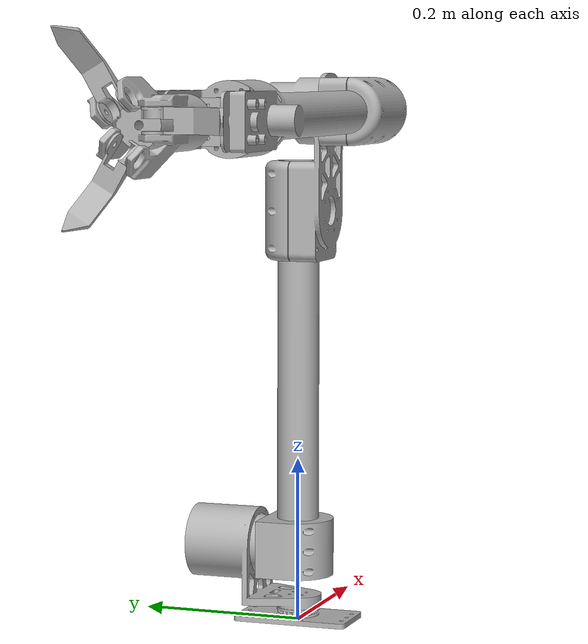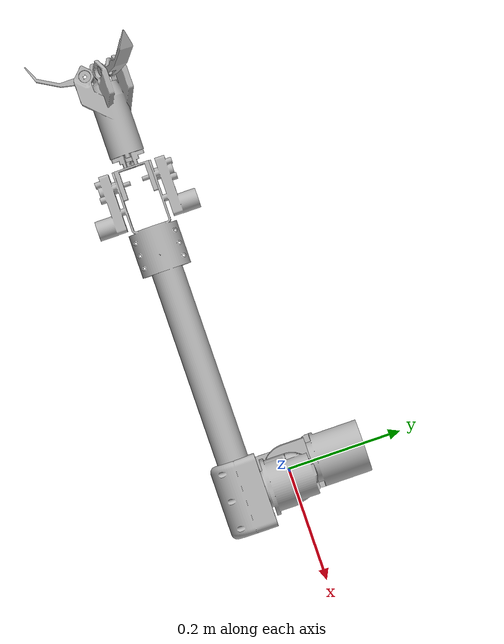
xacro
<?xml version="1.0" ?>
<robot name="arm_model" xmlns:xacro="http://www.ros.org/wiki/xacro">

<xacro:include filename="$(find arm_description)/urdf/materials.xacro" />
<xacro:arg name="controllers_yaml" default="" />
<!--xacro:include filename="$(find arm_description)/urdf/arm_model.trans" /-->
<!--xacro:include filename="$(find arm_description)/urdf/arm_model.gazebo" /-->
<link name="base_link">
  <inertial>
    <origin xyz="-2.7080784655318005e-16 5.153839971860783e-15 0.004136802049565343" rpy="0 0 0"/>
    <mass value="0.5419518835414427"/>
    <inertia ixx="0.00091" iyy="0.00027" izz="0.001167" ixy="0.0" iyz="0.0" ixz="-0.0"/>
  </inertial>
  <visual>
    <origin xyz="0 0 0" rpy="0 0 0"/>
    <geometry>
      <mesh filename="package://arm_description/meshes/base_link.stl" scale="0.001 0.001 0.001"/>
    </geometry>
    <material name="silver"/>
  </visual>
  <collision>
    <origin xyz="0 0 0" rpy="0 0 0"/>
    <geometry>
      <mesh filename="package://arm_description/meshes/base_link.stl" scale="0.001 0.001 0.001"/>
    </geometry>
  </collision>
</link>

<link name="link_1_2_1">
  <inertial>
    <origin xyz="-1.479118549574756e-14 0.08134270362128795 0.0690799408284275" rpy="0 0 0"/>
    <mass value="4.757704779656536"/>
    <inertia ixx="0.009037" iyy="0.006353" izz="0.007509" ixy="0.0" iyz="-0.001921" ixz="0.0"/>
  </inertial>
  <visual>
    <origin xyz="0.0 -0.0 -0.01635" rpy="0 0 0"/>
    <geometry>
      <mesh filename="package://arm_description/meshes/link_1_2_1.stl" scale="0.001 0.001 0.001"/>
    </geometry>
    <material name="silver"/>
  </visual>
  <collision>
    <origin xyz="0.0 -0.0 -0.01635" rpy="0 0 0"/>
    <geometry>
      <mesh filename="package://arm_description/meshes/link_1_2_1.stl" scale="0.001 0.001 0.001"/>
    </geometry>
  </collision>
</link>

<link name="link_2_3_1">
  <inertial>
    <origin xyz="-3.446896306753785e-06 -0.043669905768610996 0.3184481008001334" rpy="0 0 0"/>
    <mass value="9.395984925546623"/>
    <inertia ixx="0.446386" iyy="0.446247" izz="0.010806" ixy="1e-06" iyz="0.009231" ixz="6e-06"/>
  </inertial>
  <visual>
    <origin xyz="0.0 -0.03985 -0.091975" rpy="0 0 0"/>
    <geometry>
      <mesh filename="package://arm_description/meshes/link_2_3_1.stl" scale="0.001 0.001 0.001"/>
    </geometry>
    <material name="silver"/>
  </visual>
  <collision>
    <origin xyz="0.0 -0.03985 -0.091975" rpy="0 0 0"/>
    <geometry>
      <mesh filename="package://arm_description/meshes/link_2_3_1.stl" scale="0.001 0.001 0.001"/>
    </geometry>
  </collision>
</link>

<link name="link_3_4_1">
  <inertial>
    <origin xyz="-0.2074795427008168 -0.03406338226916051 5.142208137076665e-08" rpy="0 0 0"/>
    <mass value="6.512996018816775"/>
    <inertia ixx="0.008247" iyy="0.308164" izz="0.30966" ixy="-0.001266" iyz="0.0" ixz="0.0"/>
  </inertial>
  <visual>
    <origin xyz="0.0 0.04565 -0.624975" rpy="0 0 0"/>
    <geometry>
      <mesh filename="package://arm_description/meshes/link_3_4_1.stl" scale="0.001 0.001 0.001"/>
    </geometry>
    <material name="silver"/>
  </visual>
  <collision>
    <origin xyz="0.0 0.04565 -0.624975" rpy="0 0 0"/>
    <geometry>
      <mesh filename="package://arm_description/meshes/link_3_4_1.stl" scale="0.001 0.001 0.001"/>
    </geometry>
  </collision>
</link>

<link name="link_finger_1_1">
  <inertial>
    <origin xyz="-0.00495986465075704 0.030307992986428278 0.025291287240302274" rpy="0 0 0"/>
    <mass value="0.11283837193238071"/>
    <inertia ixx="8e-05" iyy="7e-05" izz="3.3e-05" ixy="1.1e-05" iyz="-2.8e-05" ixz="2.1e-05"/>
  </inertial>
  <visual>
    <origin xyz="0.708667 0.076078 -0.648894" rpy="0 0 0"/>
    <geometry>
      <mesh filename="package://arm_description/meshes/link_finger_1_1.stl" scale="0.001 0.001 0.001"/>
    </geometry>
    <material name="silver"/>
  </visual>
  <collision>
    <origin xyz="0.708667 0.076078 -0.648894" rpy="0 0 0"/>
    <geometry>
      <mesh filename="package://arm_description/meshes/link_finger_1_1.stl" scale="0.001 0.001 0.001"/>
    </geometry>
  </collision>
</link>

<link name="link_finger_2_1">
  <inertial>
    <origin xyz="-0.00495986382405833 -0.03705735516510887 -0.012358183998697037" rpy="0 0 0"/>
    <mass value="0.11283837197844168"/>
    <inertia ixx="8e-05" iyy="1.8e-05" izz="8.5e-05" ixy="-2.3e-05" iyz="-2e-06" ixz="-1e-06"/>
  </inertial>
  <visual>
    <origin xyz="0.708667 0.10365 -0.642975" rpy="0 0 0"/>
    <geometry>
      <mesh filename="package://arm_description/meshes/link_finger_2_1.stl" scale="0.001 0.001 0.001"/>
    </geometry>
    <material name="silver"/>
  </visual>
  <collision>
    <origin xyz="0.708667 0.10365 -0.642975" rpy="0 0 0"/>
    <geometry>
      <mesh filename="package://arm_description/meshes/link_finger_2_1.stl" scale="0.001 0.001 0.001"/>
    </geometry>
  </collision>
</link>

<link name="link_finger_3_1">
  <inertial>
    <origin xyz="-0.004959864650756818 0.02923072135253657 -0.025913103520703862" rpy="0 0 0"/>
    <mass value="0.11283837193238071"/>
    <inertia ixx="8e-05" iyy="6.7e-05" izz="3.7e-05" ixy="1.2e-05" iyz="3e-05" ixz="-2e-05"/>
  </inertial>
  <visual>
    <origin xyz="0.708667 0.084738 -0.596056" rpy="0 0 0"/>
    <geometry>
      <mesh filename="package://arm_description/meshes/link_finger_3_1.stl" scale="0.001 0.001 0.001"/>
    </geometry>
    <material name="silver"/>
  </visual>
  <collision>
    <origin xyz="0.708667 0.084738 -0.596056" rpy="0 0 0"/>
    <geometry>
      <mesh filename="package://arm_description/meshes/link_finger_3_1.stl" scale="0.001 0.001 0.001"/>
    </geometry>
  </collision>
</link>

<link name="link_5_endeff_1">
  <inertial>
    <origin xyz="-0.09099428908136209 3.2387508258624464e-08 3.823071392794475e-08" rpy="0 0 0"/>
    <mass value="1.7115453307416668"/>
    <inertia ixx="0.001339" iyy="0.003687" izz="0.003687" ixy="-0.0" iyz="-0.0" ixz="-0.0"/>
  </inertial>
  <visual>
    <origin xyz="0.551575 0.08065 -0.624975" rpy="0 0 0"/>
    <geometry>
      <mesh filename="package://arm_description/meshes/link_5_endeff_1.stl" scale="0.001 0.001 0.001"/>
    </geometry>
    <material name="silver"/>
  </visual>
  <collision>
    <origin xyz="0.551575 0.08065 -0.624975" rpy="0 0 0"/>
    <geometry>
      <mesh filename="package://arm_description/meshes/link_5_endeff_1.stl" scale="0.001 0.001 0.001"/>
    </geometry>
  </collision>
</link>

<link name="link_4_5_1">
  <inertial>
    <origin xyz="-0.0028773326220321582 -0.02900000000001071 -1.2212453270876722e-15" rpy="0 0 0"/>
    <mass value="0.24645301797117772"/>
    <inertia ixx="0.000198" iyy="0.000114" izz="0.000204" ixy="0.0" iyz="-0.0" ixz="-0.0"/>
  </inertial>
  <visual>
    <origin xyz="0.527575 0.05165 -0.624975" rpy="0 0 0"/>
    <geometry>
      <mesh filename="package://arm_description/meshes/link_4_5_1.stl" scale="0.001 0.001 0.001"/>
    </geometry>
    <material name="silver"/>
  </visual>
  <collision>
    <origin xyz="0.527575 0.05165 -0.624975" rpy="0 0 0"/>
    <geometry>
      <mesh filename="package://arm_description/meshes/link_4_5_1.stl" scale="0.001 0.001 0.001"/>
    </geometry>
  </collision>
</link>

<joint name="joint_axis_1" type="continuous">
  <origin xyz="0.0 0.0 0.01635" rpy="0 0 0"/>
  <parent link="base_link"/>
  <child link="link_1_2_1"/>
  <axis xyz="0.0 0.0 -1.0"/>
  <dynamics damping="1.0" friction="0.0"/>
</joint>

<joint name="joint_axis_2" type="continuous">
  <origin xyz="0.0 0.03985 0.075625" rpy="0 0 0"/>
  <parent link="link_1_2_1"/>
  <child link="link_2_3_1"/>
  <axis xyz="0.0 1.0 0.0"/>
  <dynamics damping="1.0" friction="0.0"/>
</joint>

<joint name="joint_axis_3" type="continuous">
  <origin xyz="0.0 -0.0855 0.533" rpy="0 0 0"/>
  <parent link="link_2_3_1"/>
  <child link="link_3_4_1"/>
  <axis xyz="-0.0 -1.0 -0.0"/>
  <dynamics damping="1.0" friction="0.0"/>
</joint>

<joint name="joint_finger_1" type="continuous">
  <origin xyz="-0.157092 0.004572 0.023919" rpy="0 0 0"/>
  <parent link="link_5_endeff_1"/>
  <child link="link_finger_1_1"/>
  <axis xyz="0.0 -0.866025 0.5"/>
  <dynamics damping="1.0" friction="0.0"/>
</joint>

<joint name="joint_finger_2" type="continuous">
  <origin xyz="-0.157092 -0.023 0.018" rpy="0 0 0"/>
  <parent link="link_5_endeff_1"/>
  <child link="link_finger_2_1"/>
  <axis xyz="-0.0 -0.0 -1.0"/>
  <dynamics damping="1.0" friction="0.0"/>
</joint>

<joint name="joint_finger_3" type="continuous">
  <origin xyz="-0.157092 -0.004088 -0.028919" rpy="0 0 0"/>
  <parent link="link_5_endeff_1"/>
  <child link="link_finger_3_1"/>
  <axis xyz="0.0 0.866025 0.5"/>
  <dynamics damping="1.0" friction="0.0"/>
</joint>

<joint name="joint_axis_5" type="continuous">
  <origin xyz="-0.024 -0.029 0.0" rpy="0 0 0"/>
  <parent link="link_4_5_1"/>
  <child link="link_5_endeff_1"/>
  <axis xyz="1.0 0.0 0.0"/>
  <dynamics damping="1.0" friction="0.0"/>
</joint>

<joint name="joint_axis_4" type="continuous">
  <origin xyz="-0.527575 -0.006 0.0" rpy="0 0 0"/>
  <parent link="link_3_4_1"/>
  <child link="link_4_5_1"/>
  <axis xyz="-0.0 1.0 0.0"/>
  <dynamics damping="1.0" friction="0.0"/>
</joint>

<ros2_control name="ArmSystem" type="system">
  <hardware>
    <!-- add hardware plugin here-->
    <!-- Gazebo Sim hardware interface -->
    <plugin>gz_ros2_control/GazeboSimSystem</plugin>
  </hardware>

  <!-- List the joints ros2_control will command -->
  <joint name="joint_axis_1">
    <command_interface name="position"/>
    <state_interface name="position"/>
    <state_interface name="velocity"/>
  </joint>

  <joint name="joint_axis_2">
    <command_interface name="position"/>
    <state_interface name="position"/>
    <state_interface name="velocity"/>
  </joint>

  <joint name="joint_axis_3">
    <command_interface name="position"/>
    <state_interface name="position"/>
    <state_interface name="velocity"/>
  </joint>

  <joint name="joint_axis_4">
    <command_interface name="position"/>
    <state_interface name="position"/>
    <state_interface name="velocity"/>
  </joint>

  <joint name="joint_axis_5">
    <command_interface name="velocity"/>
    <state_interface name="position"/>
    <state_interface name="velocity"/>
  </joint>

  <joint name="joint_finger_1">
    <command_interface name="position"/>
    <state_interface name="position"/>
    <state_interface name="velocity"/>
  </joint>

  <joint name="joint_finger_2">
    <command_interface name="position"/>
    <state_interface name="position"/>
    <state_interface name="velocity"/>
  </joint>

  <joint name="joint_finger_3">
    <command_interface name="position"/>
    <state_interface name="position"/>
    <state_interface name="velocity"/>
  </joint>
</ros2_control>

<gazebo>
  <plugin filename="gz_ros2_control-system" name="gz_ros2_control::GazeboSimROS2ControlPlugin">
    <robot_param>robot_description</robot_param>
    <robot_param_node>robot_state_publisher</robot_param_node>
    <parameters>$(arg controllers_yaml)</parameters>
  </plugin>
</gazebo>

</robot>

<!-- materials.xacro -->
<robot name="arm_model" xmlns:xacro="http://www.ros.org/wiki/xacro" >

<material name="silver">
  <color rgba="0.700 0.700 0.700 1.000"/>
</material>

</robot>
